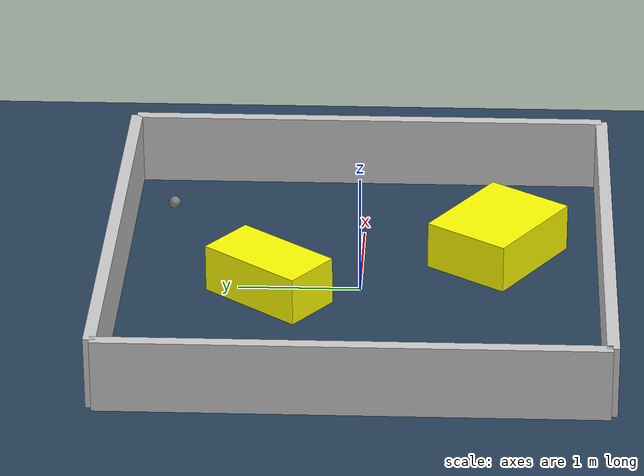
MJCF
<?xml version="1.0" ?>
<mujoco model="generated_environment">
  <option timestep="0.01" integrator="RK4" cone="elliptic"/>
  <default>
    <geom density="1"/>
  </default>
  <asset>
    <texture builtin="gradient" height="3072" rgb1="0.3 0.5 0.7" rgb2="0 0 0" type="skybox" width="512"/>
    <texture builtin="checker" height="300" mark="edge" markrgb="0.8 0.8 0.8" name="groundplane" rgb1="0.2 0.3 0.4" rgb2="0.1 0.2 0.3" type="2d" width="300"/>
    <material name="groundplane" reflectance="0.2" texrepeat="5 5" texture="groundplane" texuniform="true"/>
    <material name="robot" rgba="0.0 1.0 0.0 1"/>
  </asset>
  <worldbody>
    <light dir="0 0 -1" directional="true" pos="0 0 1.5"/>
    <geom condim="4" friction="1.0 0.005 0.001" material="groundplane" name="floor" size="0 0 0.05" type="plane"/>
    <body name="walls">
      <geom name="wall_1" condim="4" pos="-2.0 0.0 0.3" rgba="0.800000011920929 0.800000011920929 0.800000011920929 1.0" size="0.05 2.0 0.3" type="box"/>
      <geom name="wall_2" condim="4" pos="2.0 0.0 0.3" rgba="0.800000011920929 0.800000011920929 0.800000011920929 1.0" size="0.05 2.0 0.3" type="box"/>
      <geom name="wall_3" condim="4" pos="0.0 -2.0 0.3" rgba="0.800000011920929 0.800000011920929 0.800000011920929 1.0" size="2.0 0.05 0.3" type="box"/>
      <geom name="wall_4" condim="4" pos="0.0 2.0 0.3" rgba="0.800000011920929 0.800000011920929 0.800000011920929 1.0" size="2.0 0.05 0.3" type="box"/>
    </body>
    <body name="robot">
      <joint name="joint_x" type="slide" pos="0 0 0" axis="1 0 0"/>
      <joint name="joint_y" type="slide" pos="0 0 0" axis="0 1 0"/>
      <geom name="robot" type="sphere" pos="1.1347619565434974 1.6125559516671717 0.2" size="0.05" mass="5." friction="1.0 0.005 0.0001" condim="4"/>
      <site name="sensor_ball"/>
    </body>
    <body name="obstacle_1_movable">
      <geom name="obstacle_1_movable" condim="4" pos="-0.13680394871906554 0.7403011475736232 0.2" euler="0 0 232.27283089104174" friction="1.0 0.005 0.001" rgba="1 1 0 1" size="0.4676266233480046 0.24871488611026926 0.2" type="box" mass="0.1"/>
      <joint type="free"/>
    </body>
    <body name="obstacle_2_movable">
      <geom name="obstacle_2_movable" condim="4" pos="0.6070273065442007 -1.120874858147745 0.2" euler="0 0 235.90661347017948" friction="1.0 0.005 0.001" rgba="1 1 0 1" size="0.3761383492795801 0.475856669247245 0.2" type="box" mass="0.1"/>
      <joint type="free"/>
    </body>
  </worldbody>
  <actuator>
    <motor name="actuator_x" joint="joint_x" gear="1" ctrlrange="-1 1"/>
    <motor name="actuator_y" joint="joint_y" gear="1" ctrlrange="-1 1"/>
  </actuator>
</mujoco>
